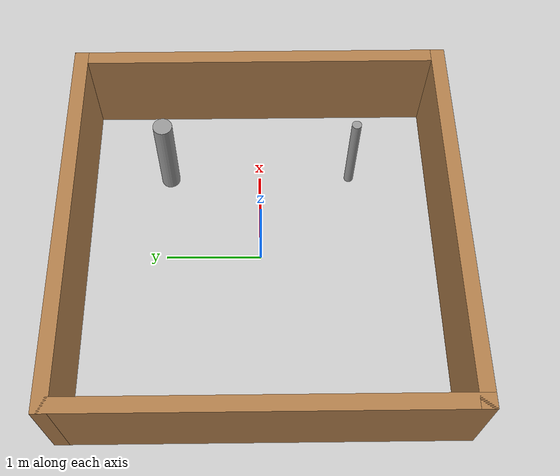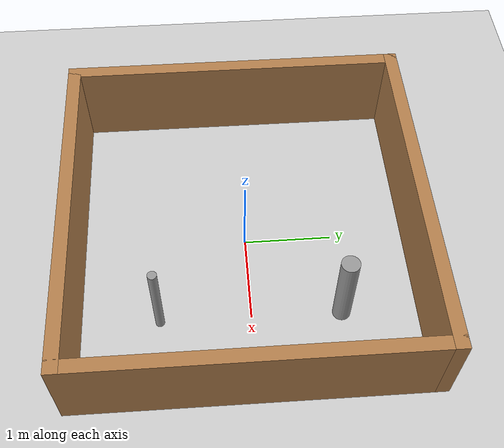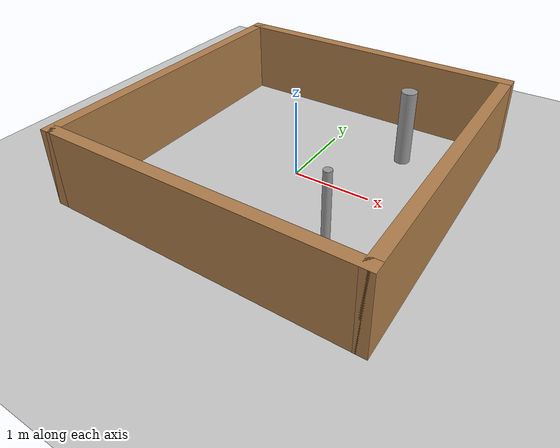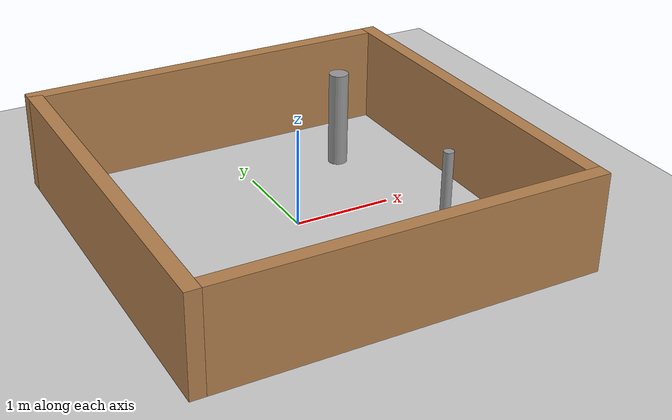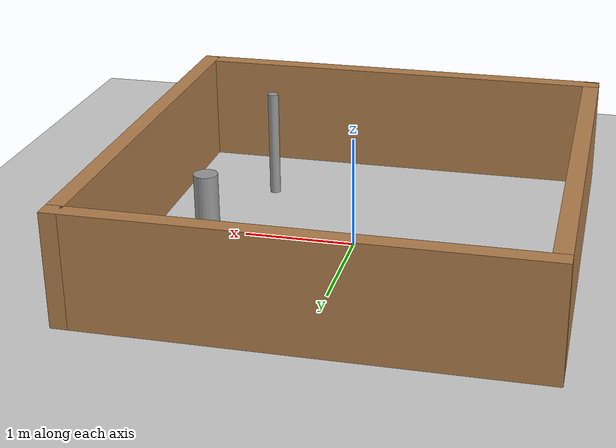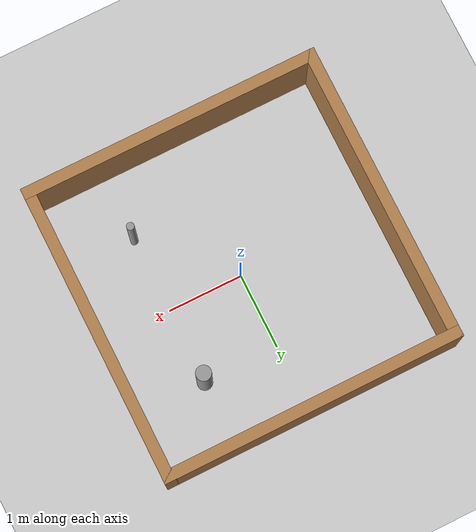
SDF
<sdf version="1.7">
 <world name="default">
  <light name="sun" type="directional">
   <pose>0 0 10 0 -0 0</pose>
   <diffuse>0.8 0.8 0.8 1</diffuse>
   <specular>0.2 0.2 0.2 1</specular>
   <attenuation>
    <range>1000</range>
    <constant>0.9</constant>
    <linear>0.01</linear>
    <quadratic>0.001</quadratic>
   </attenuation>
   <direction>-0.5 0.1 -0.9</direction>
   <spot><inner_angle>0</inner_angle><outer_angle>0</outer_angle><falloff>0</falloff></spot>
  </light>
  <model name="ground_plane">
   <static>1</static>
   <link name="link">
    <collision name="collision">
     <geometry><plane><normal>0 0 1</normal><size>100 100</size></plane></geometry>
     <surface>
      <contact><collide_bitmask>65535</collide_bitmask></contact>
      <friction><ode><mu>100</mu><mu2>50</mu2></ode></friction>
     </surface>
    </collision>
    <visual name="visual">
     <cast_shadows>0</cast_shadows>
     <geometry><plane><normal>0 0 1</normal><size>100 100</size></plane></geometry>
     <material>
      <script><uri>file://media/materials/scripts/gazebo.material</uri><name>Gazebo/Grey</name></script>
     </material>
    </visual>
   </link>
  </model>
  <gravity>0 0 -9.8</gravity>
  <magnetic_field>6e-06 2.3e-05 -4.2e-05</magnetic_field>
  <atmosphere type="adiabatic"/>
  <physics type="ode">
   <max_step_size>0.001</max_step_size>
   <real_time_factor>1</real_time_factor>
   <real_time_update_rate>1000</real_time_update_rate>
  </physics>
  <scene><ambient>0.4 0.4 0.4 1</ambient><background>0.7 0.7 0.7 1</background><shadows>1</shadows></scene>
  <spherical_coordinates>
   <surface_model>EARTH_WGS84</surface_model>
   <latitude_deg>0</latitude_deg>
   <longitude_deg>0</longitude_deg>
   <elevation>0</elevation>
   <heading_deg>0</heading_deg>
  </spherical_coordinates>
  <model name="my_box">
   <pose>-0 0.64808 0 0 -0 0</pose>
   <link name="Wall_4">
    <collision name="Wall_4_Collision">
     <geometry><box><size>4 0.15 1</size></box></geometry>
     <pose>0 0 0.5 0 -0 0</pose>
    </collision>
    <visual name="Wall_4_Visual">
     <pose>0 0 0.5 0 -0 0</pose>
     <geometry><box><size>4 0.15 1</size></box></geometry>
     <material>
      <script><uri>file://media/materials/scripts/gazebo.material</uri><name>Gazebo/Wood</name></script>
      <ambient>1 1 1 1</ambient>
     </material>
     <meta><layer>0</layer></meta>
    </visual>
    <pose>-0 1.2675 0 0 -0 3.14159</pose>
   </link>
   <link name="Wall_5">
    <collision name="Wall_5_Collision">
     <geometry><box><size>4 0.15 1</size></box></geometry>
     <pose>0 0 0.5 0 -0 0</pose>
    </collision>
    <visual name="Wall_5_Visual">
     <pose>0 0 0.5 0 -0 0</pose>
     <geometry><box><size>4 0.15 1</size></box></geometry>
     <material>
      <script><uri>file://media/materials/scripts/gazebo.material</uri><name>Gazebo/Wood</name></script>
      <ambient>1 1 1 1</ambient>
     </material>
     <meta><layer>0</layer></meta>
    </visual>
    <pose>-1.925 -0.6575 0 0 -0 -1.5708</pose>
   </link>
   <link name="Wall_6">
    <collision name="Wall_6_Collision">
     <geometry><box><size>4 0.15 1</size></box></geometry>
     <pose>0 0 0.5 0 -0 0</pose>
    </collision>
    <visual name="Wall_6_Visual">
     <pose>0 0 0.5 0 -0 0</pose>
     <geometry><box><size>4 0.15 1</size></box></geometry>
     <material>
      <script><uri>file://media/materials/scripts/gazebo.material</uri><name>Gazebo/Wood</name></script>
      <ambient>1 1 1 1</ambient>
     </material>
     <meta><layer>0</layer></meta>
    </visual>
    <pose>-0 -2.5825 0 0 -0 0</pose>
   </link>
   <link name="Wall_7">
    <collision name="Wall_7_Collision">
     <geometry><box><size>4 0.15 1</size></box></geometry>
     <pose>0 0 0.5 0 -0 0</pose>
    </collision>
    <visual name="Wall_7_Visual">
     <pose>0 0 0.5 0 -0 0</pose>
     <geometry><box><size>4 0.15 1</size></box></geometry>
     <material>
      <script><uri>file://media/materials/scripts/gazebo.material</uri><name>Gazebo/Wood</name></script>
      <ambient>1 1 1 1</ambient>
     </material>
     <meta><layer>0</layer></meta>
    </visual>
    <pose>1.925 -0.6575 0 0 -0 1.5708</pose>
   </link>
   <static>1</static>
  </model>
  <model name="my_cylinder_clone">
   <link name="link">
    <inertial>
     <mass>1</mass>
     <inertia><ixx>0.145833</ixx><ixy>0</ixy><ixz>0</ixz><iyy>0.145833</iyy><iyz>0</iyz><izz>0.125</izz></inertia>
    </inertial>
    <visual name="visual">
     <geometry><cylinder><radius>0.05</radius><length>1</length></cylinder></geometry>
     <material>
      <script><name>Gazebo/Grey</name><uri>file://media/materials/scripts/gazebo.material</uri></script>
      <shader type="pixel"><normal_map>__default__</normal_map></shader>
      <ambient>0.3 0.3 0.3 1</ambient>
      <diffuse>0.7 0.7 0.7 1</diffuse>
      <specular>0.01 0.01 0.01 1</specular>
      <emissive>0 0 0 1</emissive>
     </material>
    </visual>
    <collision name="collision">
     <geometry><cylinder><radius>0.05</radius><length>1</length></cylinder></geometry>
     <surface>
      <friction>
       <ode><mu>1</mu><mu2>1</mu2><fdir1>0 0 0</fdir1><slip1>0</slip1><slip2>0</slip2></ode>
       <torsional>
        <coefficient>1</coefficient>
        <patch_radius>0</patch_radius>
        <surface_radius>0</surface_radius>
        <use_patch_radius>1</use_patch_radius>
        <ode><slip>0</slip></ode>
       </torsional>
      </friction>
      <bounce><restitution_coefficient>0</restitution_coefficient><threshold>1e+06</threshold></bounce>
      <contact>
       <collide_without_contact>0</collide_without_contact>
       <collide_without_contact_bitmask>1</collide_without_contact_bitmask>
       <collide_bitmask>1</collide_bitmask>
       <ode>
        <soft_cfm>0</soft_cfm>
        <soft_erp>0.2</soft_erp>
        <kp>1e+13</kp>
        <kd>1</kd>
        <max_vel>0.01</max_vel>
        <min_depth>0</min_depth>
       </ode>
       <bullet>
        <split_impulse>1</split_impulse>
        <split_impulse_penetration_threshold>-0.01</split_impulse_penetration_threshold>
        <soft_cfm>0</soft_cfm>
        <soft_erp>0.2</soft_erp>
        <kp>1e+13</kp>
        <kd>1</kd>
       </bullet>
      </contact>
     </surface>
    </collision>
   </link>
   <static>0</static>
   <pose>1 -1 0.49999 2e-06 0 -1e-06</pose>
  </model>
  <model name="my_cylinder10">
   <link name="link">
    <inertial>
     <mass>1</mass>
     <inertia><ixx>0.145833</ixx><ixy>0</ixy><ixz>0</ixz><iyy>0.145833</iyy><iyz>0</iyz><izz>0.125</izz></inertia>
    </inertial>
    <visual name="visual">
     <geometry><cylinder><radius>0.1</radius><length>1</length></cylinder></geometry>
     <material>
      <script><name>Gazebo/Grey</name><uri>file://media/materials/scripts/gazebo.material</uri></script>
      <shader type="pixel"><normal_map>__default__</normal_map></shader>
      <ambient>0.3 0.3 0.3 1</ambient>
      <diffuse>0.7 0.7 0.7 1</diffuse>
      <specular>0.01 0.01 0.01 1</specular>
      <emissive>0 0 0 1</emissive>
     </material>
    </visual>
    <collision name="collision">
     <geometry><cylinder><radius>0.1</radius><length>1</length></cylinder></geometry>
     <surface>
      <friction>
       <ode><mu>1</mu><mu2>1</mu2><fdir1>0 0 0</fdir1><slip1>0</slip1><slip2>0</slip2></ode>
       <torsional>
        <coefficient>1</coefficient>
        <patch_radius>0</patch_radius>
        <surface_radius>0</surface_radius>
        <use_patch_radius>1</use_patch_radius>
        <ode><slip>0</slip></ode>
       </torsional>
      </friction>
      <bounce><restitution_coefficient>0</restitution_coefficient><threshold>1e+06</threshold></bounce>
      <contact>
       <collide_without_contact>0</collide_without_contact>
       <collide_without_contact_bitmask>1</collide_without_contact_bitmask>
       <collide_bitmask>1</collide_bitmask>
       <ode>
        <soft_cfm>0</soft_cfm>
        <soft_erp>0.2</soft_erp>
        <kp>1e+13</kp>
        <kd>1</kd>
        <max_vel>0.01</max_vel>
        <min_depth>0</min_depth>
       </ode>
       <bullet>
        <split_impulse>1</split_impulse>
        <split_impulse_penetration_threshold>-0.01</split_impulse_penetration_threshold>
        <soft_cfm>0</soft_cfm>
        <soft_erp>0.2</soft_erp>
        <kp>1e+13</kp>
        <kd>1</kd>
       </bullet>
      </contact>
     </surface>
    </collision>
   </link>
   <static>0</static>
   <pose>1 1 0.5 -1e-06 -0 4e-06</pose>
  </model>
 </world>
</sdf>
